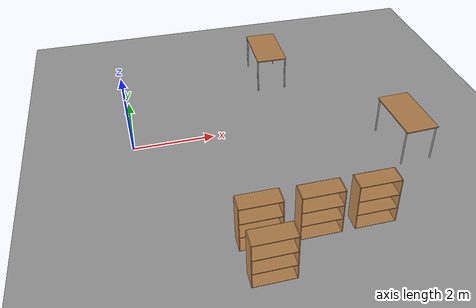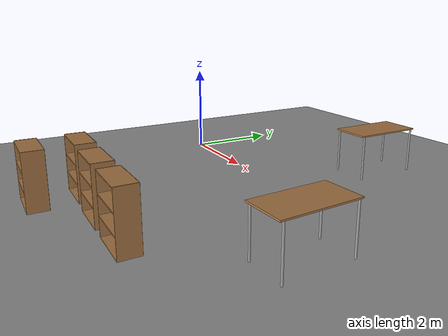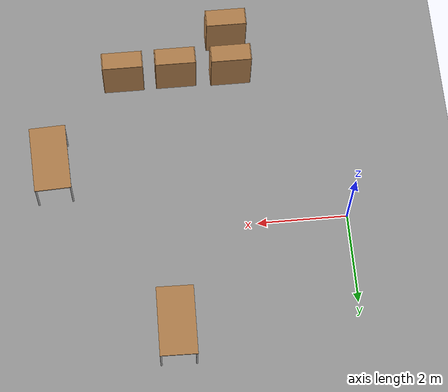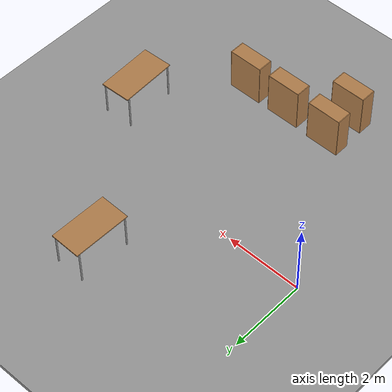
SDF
<sdf version="1.6">
 <world name="default">
  <model name="ground_plane">
   <static>1</static>
   <link name="link">
    <collision name="collision">
     <geometry><plane><normal>0 0 1</normal><size>100 100</size></plane></geometry>
     <surface><friction><ode><mu>100</mu><mu2>50</mu2></ode></friction></surface>
    </collision>
    <visual name="visual">
     <cast_shadows>0</cast_shadows>
     <geometry><plane><normal>0 0 1</normal><size>100 100</size></plane></geometry>
     <material>
      <script><uri>file://media/materials/scripts/gazebo.material</uri><name>Gazebo/Grey</name></script>
     </material>
    </visual>
   </link>
  </model>
  <model name="table">
   <static>1</static>
   <link name="link">
    <collision name="surface">
     <pose>0 0 1 0 -0 0</pose>
     <geometry><box><size>1.5 0.8 0.03</size></box></geometry>
     <surface><friction><ode><mu>0.6</mu><mu2>0.6</mu2></ode></friction></surface>
    </collision>
    <visual name="visual1">
     <pose>0 0 1 0 -0 0</pose>
     <geometry><box><size>1.5 0.8 0.03</size></box></geometry>
     <material>
      <script><uri>file://media/materials/scripts/gazebo.material</uri><name>Gazebo/Wood</name></script>
     </material>
    </visual>
    <collision name="front_left_leg">
     <pose>0.68 0.38 0.5 0 -0 0</pose>
     <geometry><cylinder><radius>0.02</radius><length>1</length></cylinder></geometry>
    </collision>
    <visual name="front_left_leg">
     <pose>0.68 0.38 0.5 0 -0 0</pose>
     <geometry><cylinder><radius>0.02</radius><length>1</length></cylinder></geometry>
     <material>
      <script><uri>file://media/materials/scripts/gazebo.material</uri><name>Gazebo/Grey</name></script>
     </material>
    </visual>
    <collision name="front_right_leg">
     <pose>0.68 -0.38 0.5 0 -0 0</pose>
     <geometry><cylinder><radius>0.02</radius><length>1</length></cylinder></geometry>
    </collision>
    <visual name="front_right_leg">
     <pose>0.68 -0.38 0.5 0 -0 0</pose>
     <geometry><cylinder><radius>0.02</radius><length>1</length></cylinder></geometry>
     <material>
      <script><uri>file://media/materials/scripts/gazebo.material</uri><name>Gazebo/Grey</name></script>
     </material>
    </visual>
    <collision name="back_right_leg">
     <pose>-0.68 -0.38 0.5 0 -0 0</pose>
     <geometry><cylinder><radius>0.02</radius><length>1</length></cylinder></geometry>
    </collision>
    <visual name="back_right_leg">
     <pose>-0.68 -0.38 0.5 0 -0 0</pose>
     <geometry><cylinder><radius>0.02</radius><length>1</length></cylinder></geometry>
     <material>
      <script><uri>file://media/materials/scripts/gazebo.material</uri><name>Gazebo/Grey</name></script>
     </material>
    </visual>
    <collision name="back_left_leg">
     <pose>-0.68 0.38 0.5 0 -0 0</pose>
     <geometry><cylinder><radius>0.02</radius><length>1</length></cylinder></geometry>
    </collision>
    <visual name="back_left_leg">
     <pose>-0.68 0.38 0.5 0 -0 0</pose>
     <geometry><cylinder><radius>0.02</radius><length>1</length></cylinder></geometry>
     <material>
      <script><uri>file://media/materials/scripts/gazebo.material</uri><name>Gazebo/Grey</name></script>
     </material>
    </visual>
   </link>
   <pose>3.97398 2.37676 0 0 -0 1.55172</pose>
  </model>
  <model name="ground_plane_0">
   <static>1</static>
   <link name="link">
    <collision name="collision">
     <geometry><plane><normal>0 0 1</normal><size>100 100</size></plane></geometry>
     <surface><friction><ode><mu>100</mu><mu2>50</mu2></ode></friction></surface>
    </collision>
    <visual name="visual">
     <cast_shadows>0</cast_shadows>
     <geometry><plane><normal>0 0 1</normal><size>100 100</size></plane></geometry>
     <material>
      <script><uri>file://media/materials/scripts/gazebo.material</uri><name>Gazebo/Grey</name></script>
     </material>
    </visual>
   </link>
   <pose>2.55488 -2.2574 0 0 -0 0</pose>
  </model>
  <model name="table_1">
   <static>1</static>
   <link name="link">
    <collision name="surface">
     <pose>0 0 1 0 -0 0</pose>
     <geometry><box><size>1.5 0.8 0.03</size></box></geometry>
     <surface><friction><ode><mu>0.6</mu><mu2>0.6</mu2></ode></friction></surface>
    </collision>
    <visual name="visual1">
     <pose>0 0 1 0 -0 0</pose>
     <geometry><box><size>1.5 0.8 0.03</size></box></geometry>
     <material>
      <script><uri>file://media/materials/scripts/gazebo.material</uri><name>Gazebo/Wood</name></script>
     </material>
    </visual>
    <collision name="front_left_leg">
     <pose>0.68 0.38 0.5 0 -0 0</pose>
     <geometry><cylinder><radius>0.02</radius><length>1</length></cylinder></geometry>
    </collision>
    <visual name="front_left_leg">
     <pose>0.68 0.38 0.5 0 -0 0</pose>
     <geometry><cylinder><radius>0.02</radius><length>1</length></cylinder></geometry>
     <material>
      <script><uri>file://media/materials/scripts/gazebo.material</uri><name>Gazebo/Grey</name></script>
     </material>
    </visual>
    <collision name="front_right_leg">
     <pose>0.68 -0.38 0.5 0 -0 0</pose>
     <geometry><cylinder><radius>0.02</radius><length>1</length></cylinder></geometry>
    </collision>
    <visual name="front_right_leg">
     <pose>0.68 -0.38 0.5 0 -0 0</pose>
     <geometry><cylinder><radius>0.02</radius><length>1</length></cylinder></geometry>
     <material>
      <script><uri>file://media/materials/scripts/gazebo.material</uri><name>Gazebo/Grey</name></script>
     </material>
    </visual>
    <collision name="back_right_leg">
     <pose>-0.68 -0.38 0.5 0 -0 0</pose>
     <geometry><cylinder><radius>0.02</radius><length>1</length></cylinder></geometry>
    </collision>
    <visual name="back_right_leg">
     <pose>-0.68 -0.38 0.5 0 -0 0</pose>
     <geometry><cylinder><radius>0.02</radius><length>1</length></cylinder></geometry>
     <material>
      <script><uri>file://media/materials/scripts/gazebo.material</uri><name>Gazebo/Grey</name></script>
     </material>
    </visual>
    <collision name="back_left_leg">
     <pose>-0.68 0.38 0.5 0 -0 0</pose>
     <geometry><cylinder><radius>0.02</radius><length>1</length></cylinder></geometry>
    </collision>
    <visual name="back_left_leg">
     <pose>-0.68 0.38 0.5 0 -0 0</pose>
     <geometry><cylinder><radius>0.02</radius><length>1</length></cylinder></geometry>
     <material>
      <script><uri>file://media/materials/scripts/gazebo.material</uri><name>Gazebo/Grey</name></script>
     </material>
    </visual>
   </link>
   <pose>6.43873 -1.54002 0 0 0 -1.52855</pose>
  </model>
  <model name="bookshelf_1">
   <static>1</static>
   <link name="link">
    <inertial><mass>1</mass></inertial>
    <collision name="back">
     <pose>0 0.005 0.6 0 -0 0</pose>
     <geometry><box><size>0.9 0.01 1.2</size></box></geometry>
    </collision>
    <visual name="visual1">
     <pose>0 0.005 0.6 0 -0 0</pose>
     <geometry><box><size>0.9 0.01 1.2</size></box></geometry>
     <material>
      <script><uri>file://media/materials/scripts/gazebo.material</uri><name>Gazebo/Wood</name></script>
     </material>
    </visual>
    <collision name="left_side">
     <pose>0.45 -0.195 0.6 0 -0 0</pose>
     <geometry><box><size>0.02 0.4 1.2</size></box></geometry>
    </collision>
    <visual name="visual2">
     <pose>0.45 -0.195 0.6 0 -0 0</pose>
     <geometry><box><size>0.02 0.4 1.2</size></box></geometry>
     <material>
      <script><uri>file://media/materials/scripts/gazebo.material</uri><name>Gazebo/Wood</name></script>
     </material>
    </visual>
    <collision name="right_side">
     <pose>-0.45 -0.195 0.6 0 -0 0</pose>
     <geometry><box><size>0.02 0.4 1.2</size></box></geometry>
    </collision>
    <visual name="visual3">
     <pose>-0.45 -0.195 0.6 0 -0 0</pose>
     <geometry><box><size>0.02 0.4 1.2</size></box></geometry>
     <material>
      <script><uri>file://media/materials/scripts/gazebo.material</uri><name>Gazebo/Wood</name></script>
     </material>
    </visual>
    <collision name="bottom">
     <pose>0 -0.195 0.03 0 -0 0</pose>
     <geometry><box><size>0.88 0.4 0.06</size></box></geometry>
    </collision>
    <visual name="visual4">
     <pose>0 -0.195 0.03 0 -0 0</pose>
     <geometry><box><size>0.88 0.4 0.06</size></box></geometry>
     <material>
      <script><uri>file://media/materials/scripts/gazebo.material</uri><name>Gazebo/Wood</name></script>
     </material>
    </visual>
    <collision name="top">
     <pose>0 -0.195 1.19 0 -0 0</pose>
     <geometry><box><size>0.88 0.4 0.02</size></box></geometry>
    </collision>
    <visual name="visual5">
     <pose>0 -0.195 1.19 0 -0 0</pose>
     <geometry><box><size>0.88 0.4 0.02</size></box></geometry>
     <material>
      <script><uri>file://media/materials/scripts/gazebo.material</uri><name>Gazebo/Wood</name></script>
     </material>
    </visual>
    <collision name="low_shelf">
     <pose>0 -0.195 0.43 0 -0 0</pose>
     <geometry><box><size>0.88 0.4 0.02</size></box></geometry>
    </collision>
    <visual name="visual6">
     <pose>0 -0.195 0.43 0 -0 0</pose>
     <geometry><box><size>0.88 0.4 0.02</size></box></geometry>
     <material>
      <script><uri>file://media/materials/scripts/gazebo.material</uri><name>Gazebo/Wood</name></script>
     </material>
    </visual>
    <collision name="high_shelf">
     <pose>0 -0.195 0.8 0 -0 0</pose>
     <geometry><box><size>0.88 0.4 0.02</size></box></geometry>
    </collision>
    <visual name="visual7">
     <pose>0 -0.195 0.8 0 -0 0</pose>
     <geometry><box><size>0.88 0.4 0.02</size></box></geometry>
     <material>
      <script><uri>file://media/materials/scripts/gazebo.material</uri><name>Gazebo/Wood</name></script>
     </material>
    </visual>
   </link>
   <pose>2.2636 -3.49117 0 0 -0 0</pose>
  </model>
  <model name="bookshelf_2">
   <static>1</static>
   <link name="link">
    <inertial><mass>1</mass></inertial>
    <collision name="back">
     <pose>0 0.005 0.6 0 -0 0</pose>
     <geometry><box><size>0.9 0.01 1.2</size></box></geometry>
    </collision>
    <visual name="visual1">
     <pose>0 0.005 0.6 0 -0 0</pose>
     <geometry><box><size>0.9 0.01 1.2</size></box></geometry>
     <material>
      <script><uri>file://media/materials/scripts/gazebo.material</uri><name>Gazebo/Wood</name></script>
     </material>
    </visual>
    <collision name="left_side">
     <pose>0.45 -0.195 0.6 0 -0 0</pose>
     <geometry><box><size>0.02 0.4 1.2</size></box></geometry>
    </collision>
    <visual name="visual2">
     <pose>0.45 -0.195 0.6 0 -0 0</pose>
     <geometry><box><size>0.02 0.4 1.2</size></box></geometry>
     <material>
      <script><uri>file://media/materials/scripts/gazebo.material</uri><name>Gazebo/Wood</name></script>
     </material>
    </visual>
    <collision name="right_side">
     <pose>-0.45 -0.195 0.6 0 -0 0</pose>
     <geometry><box><size>0.02 0.4 1.2</size></box></geometry>
    </collision>
    <visual name="visual3">
     <pose>-0.45 -0.195 0.6 0 -0 0</pose>
     <geometry><box><size>0.02 0.4 1.2</size></box></geometry>
     <material>
      <script><uri>file://media/materials/scripts/gazebo.material</uri><name>Gazebo/Wood</name></script>
     </material>
    </visual>
    <collision name="bottom">
     <pose>0 -0.195 0.03 0 -0 0</pose>
     <geometry><box><size>0.88 0.4 0.06</size></box></geometry>
    </collision>
    <visual name="visual4">
     <pose>0 -0.195 0.03 0 -0 0</pose>
     <geometry><box><size>0.88 0.4 0.06</size></box></geometry>
     <material>
      <script><uri>file://media/materials/scripts/gazebo.material</uri><name>Gazebo/Wood</name></script>
     </material>
    </visual>
    <collision name="top">
     <pose>0 -0.195 1.19 0 -0 0</pose>
     <geometry><box><size>0.88 0.4 0.02</size></box></geometry>
    </collision>
    <visual name="visual5">
     <pose>0 -0.195 1.19 0 -0 0</pose>
     <geometry><box><size>0.88 0.4 0.02</size></box></geometry>
     <material>
      <script><uri>file://media/materials/scripts/gazebo.material</uri><name>Gazebo/Wood</name></script>
     </material>
    </visual>
    <collision name="low_shelf">
     <pose>0 -0.195 0.43 0 -0 0</pose>
     <geometry><box><size>0.88 0.4 0.02</size></box></geometry>
    </collision>
    <visual name="visual6">
     <pose>0 -0.195 0.43 0 -0 0</pose>
     <geometry><box><size>0.88 0.4 0.02</size></box></geometry>
     <material>
      <script><uri>file://media/materials/scripts/gazebo.material</uri><name>Gazebo/Wood</name></script>
     </material>
    </visual>
    <collision name="high_shelf">
     <pose>0 -0.195 0.8 0 -0 0</pose>
     <geometry><box><size>0.88 0.4 0.02</size></box></geometry>
    </collision>
    <visual name="visual7">
     <pose>0 -0.195 0.8 0 -0 0</pose>
     <geometry><box><size>0.88 0.4 0.02</size></box></geometry>
     <material>
      <script><uri>file://media/materials/scripts/gazebo.material</uri><name>Gazebo/Wood</name></script>
     </material>
    </visual>
   </link>
   <pose>3.51852 -3.51648 0 0 -0 0</pose>
  </model>
  <model name="bookshelf_3">
   <static>1</static>
   <link name="link">
    <inertial><mass>1</mass></inertial>
    <collision name="back">
     <pose>0 0.005 0.6 0 -0 0</pose>
     <geometry><box><size>0.9 0.01 1.2</size></box></geometry>
    </collision>
    <visual name="visual1">
     <pose>0 0.005 0.6 0 -0 0</pose>
     <geometry><box><size>0.9 0.01 1.2</size></box></geometry>
     <material>
      <script><uri>file://media/materials/scripts/gazebo.material</uri><name>Gazebo/Wood</name></script>
     </material>
    </visual>
    <collision name="left_side">
     <pose>0.45 -0.195 0.6 0 -0 0</pose>
     <geometry><box><size>0.02 0.4 1.2</size></box></geometry>
    </collision>
    <visual name="visual2">
     <pose>0.45 -0.195 0.6 0 -0 0</pose>
     <geometry><box><size>0.02 0.4 1.2</size></box></geometry>
     <material>
      <script><uri>file://media/materials/scripts/gazebo.material</uri><name>Gazebo/Wood</name></script>
     </material>
    </visual>
    <collision name="right_side">
     <pose>-0.45 -0.195 0.6 0 -0 0</pose>
     <geometry><box><size>0.02 0.4 1.2</size></box></geometry>
    </collision>
    <visual name="visual3">
     <pose>-0.45 -0.195 0.6 0 -0 0</pose>
     <geometry><box><size>0.02 0.4 1.2</size></box></geometry>
     <material>
      <script><uri>file://media/materials/scripts/gazebo.material</uri><name>Gazebo/Wood</name></script>
     </material>
    </visual>
    <collision name="bottom">
     <pose>0 -0.195 0.03 0 -0 0</pose>
     <geometry><box><size>0.88 0.4 0.06</size></box></geometry>
    </collision>
    <visual name="visual4">
     <pose>0 -0.195 0.03 0 -0 0</pose>
     <geometry><box><size>0.88 0.4 0.06</size></box></geometry>
     <material>
      <script><uri>file://media/materials/scripts/gazebo.material</uri><name>Gazebo/Wood</name></script>
     </material>
    </visual>
    <collision name="top">
     <pose>0 -0.195 1.19 0 -0 0</pose>
     <geometry><box><size>0.88 0.4 0.02</size></box></geometry>
    </collision>
    <visual name="visual5">
     <pose>0 -0.195 1.19 0 -0 0</pose>
     <geometry><box><size>0.88 0.4 0.02</size></box></geometry>
     <material>
      <script><uri>file://media/materials/scripts/gazebo.material</uri><name>Gazebo/Wood</name></script>
     </material>
    </visual>
    <collision name="low_shelf">
     <pose>0 -0.195 0.43 0 -0 0</pose>
     <geometry><box><size>0.88 0.4 0.02</size></box></geometry>
    </collision>
    <visual name="visual6">
     <pose>0 -0.195 0.43 0 -0 0</pose>
     <geometry><box><size>0.88 0.4 0.02</size></box></geometry>
     <material>
      <script><uri>file://media/materials/scripts/gazebo.material</uri><name>Gazebo/Wood</name></script>
     </material>
    </visual>
    <collision name="high_shelf">
     <pose>0 -0.195 0.8 0 -0 0</pose>
     <geometry><box><size>0.88 0.4 0.02</size></box></geometry>
    </collision>
    <visual name="visual7">
     <pose>0 -0.195 0.8 0 -0 0</pose>
     <geometry><box><size>0.88 0.4 0.02</size></box></geometry>
     <material>
      <script><uri>file://media/materials/scripts/gazebo.material</uri><name>Gazebo/Wood</name></script>
     </material>
    </visual>
   </link>
   <pose>4.71138 -3.50936 0 0 -0 0</pose>
  </model>
  <model name="bookshelf_4">
   <static>1</static>
   <link name="link">
    <inertial><mass>1</mass></inertial>
    <collision name="back">
     <pose>0 0.005 0.6 0 -0 0</pose>
     <geometry><box><size>0.9 0.01 1.2</size></box></geometry>
    </collision>
    <visual name="visual1">
     <pose>0 0.005 0.6 0 -0 0</pose>
     <geometry><box><size>0.9 0.01 1.2</size></box></geometry>
     <material>
      <script><uri>file://media/materials/scripts/gazebo.material</uri><name>Gazebo/Wood</name></script>
     </material>
    </visual>
    <collision name="left_side">
     <pose>0.45 -0.195 0.6 0 -0 0</pose>
     <geometry><box><size>0.02 0.4 1.2</size></box></geometry>
    </collision>
    <visual name="visual2">
     <pose>0.45 -0.195 0.6 0 -0 0</pose>
     <geometry><box><size>0.02 0.4 1.2</size></box></geometry>
     <material>
      <script><uri>file://media/materials/scripts/gazebo.material</uri><name>Gazebo/Wood</name></script>
     </material>
    </visual>
    <collision name="right_side">
     <pose>-0.45 -0.195 0.6 0 -0 0</pose>
     <geometry><box><size>0.02 0.4 1.2</size></box></geometry>
    </collision>
    <visual name="visual3">
     <pose>-0.45 -0.195 0.6 0 -0 0</pose>
     <geometry><box><size>0.02 0.4 1.2</size></box></geometry>
     <material>
      <script><uri>file://media/materials/scripts/gazebo.material</uri><name>Gazebo/Wood</name></script>
     </material>
    </visual>
    <collision name="bottom">
     <pose>0 -0.195 0.03 0 -0 0</pose>
     <geometry><box><size>0.88 0.4 0.06</size></box></geometry>
    </collision>
    <visual name="visual4">
     <pose>0 -0.195 0.03 0 -0 0</pose>
     <geometry><box><size>0.88 0.4 0.06</size></box></geometry>
     <material>
      <script><uri>file://media/materials/scripts/gazebo.material</uri><name>Gazebo/Wood</name></script>
     </material>
    </visual>
    <collision name="top">
     <pose>0 -0.195 1.19 0 -0 0</pose>
     <geometry><box><size>0.88 0.4 0.02</size></box></geometry>
    </collision>
    <visual name="visual5">
     <pose>0 -0.195 1.19 0 -0 0</pose>
     <geometry><box><size>0.88 0.4 0.02</size></box></geometry>
     <material>
      <script><uri>file://media/materials/scripts/gazebo.material</uri><name>Gazebo/Wood</name></script>
     </material>
    </visual>
    <collision name="low_shelf">
     <pose>0 -0.195 0.43 0 -0 0</pose>
     <geometry><box><size>0.88 0.4 0.02</size></box></geometry>
    </collision>
    <visual name="visual6">
     <pose>0 -0.195 0.43 0 -0 0</pose>
     <geometry><box><size>0.88 0.4 0.02</size></box></geometry>
     <material>
      <script><uri>file://media/materials/scripts/gazebo.material</uri><name>Gazebo/Wood</name></script>
     </material>
    </visual>
    <collision name="high_shelf">
     <pose>0 -0.195 0.8 0 -0 0</pose>
     <geometry><box><size>0.88 0.4 0.02</size></box></geometry>
    </collision>
    <visual name="visual7">
     <pose>0 -0.195 0.8 0 -0 0</pose>
     <geometry><box><size>0.88 0.4 0.02</size></box></geometry>
     <material>
      <script><uri>file://media/materials/scripts/gazebo.material</uri><name>Gazebo/Wood</name></script>
     </material>
    </visual>
   </link>
   <pose>2.29215 -4.40941 0 0 -0 0</pose>
  </model>
 </world>
</sdf>
